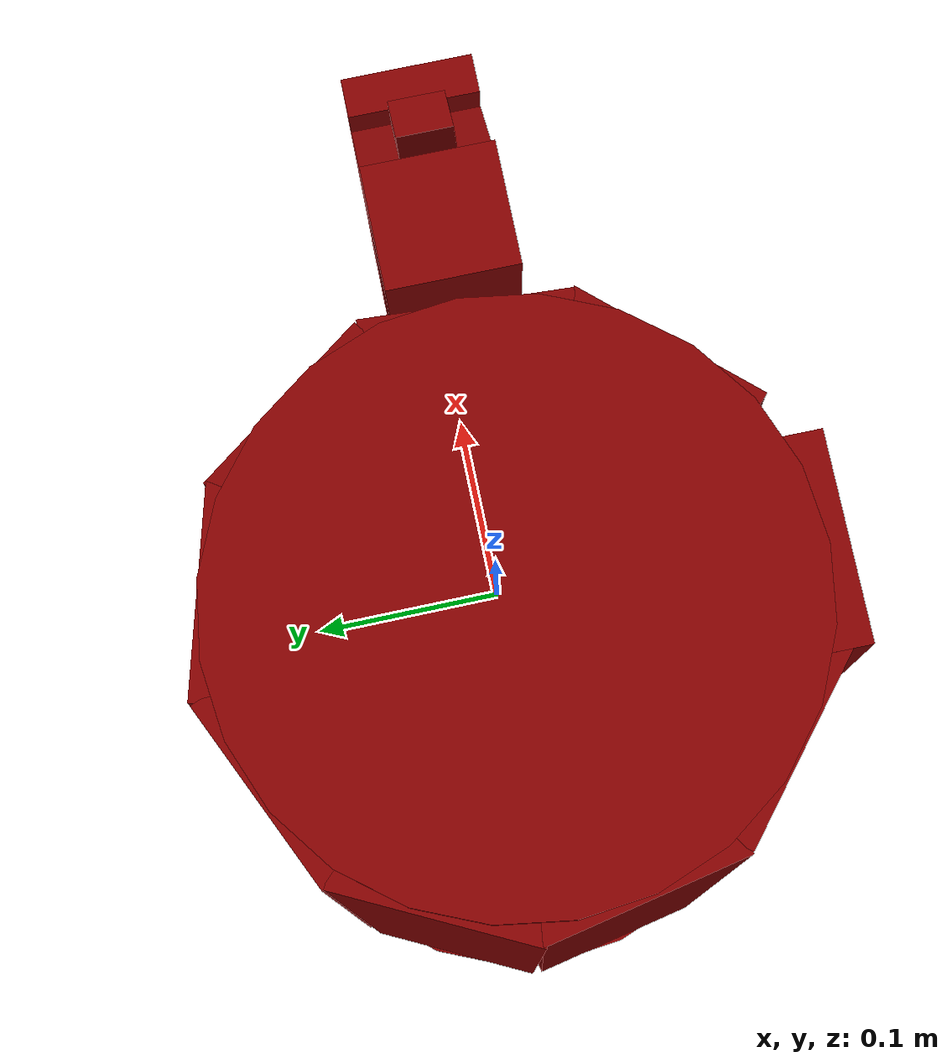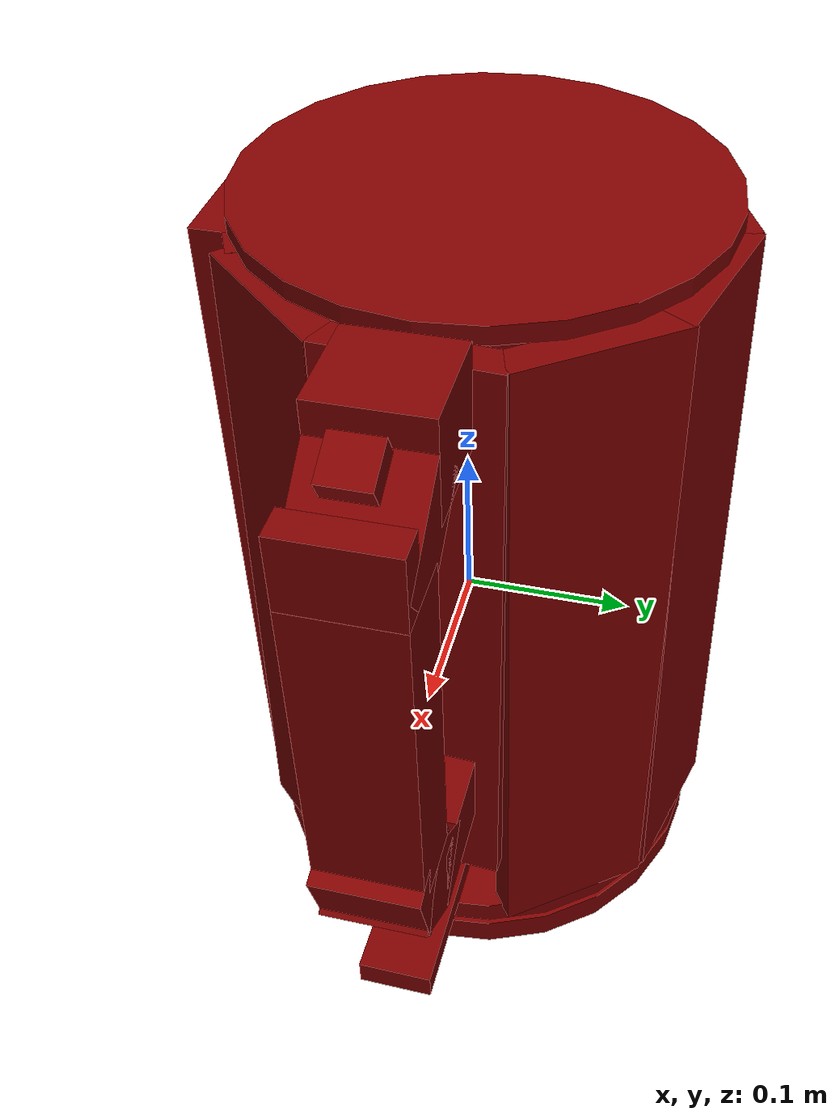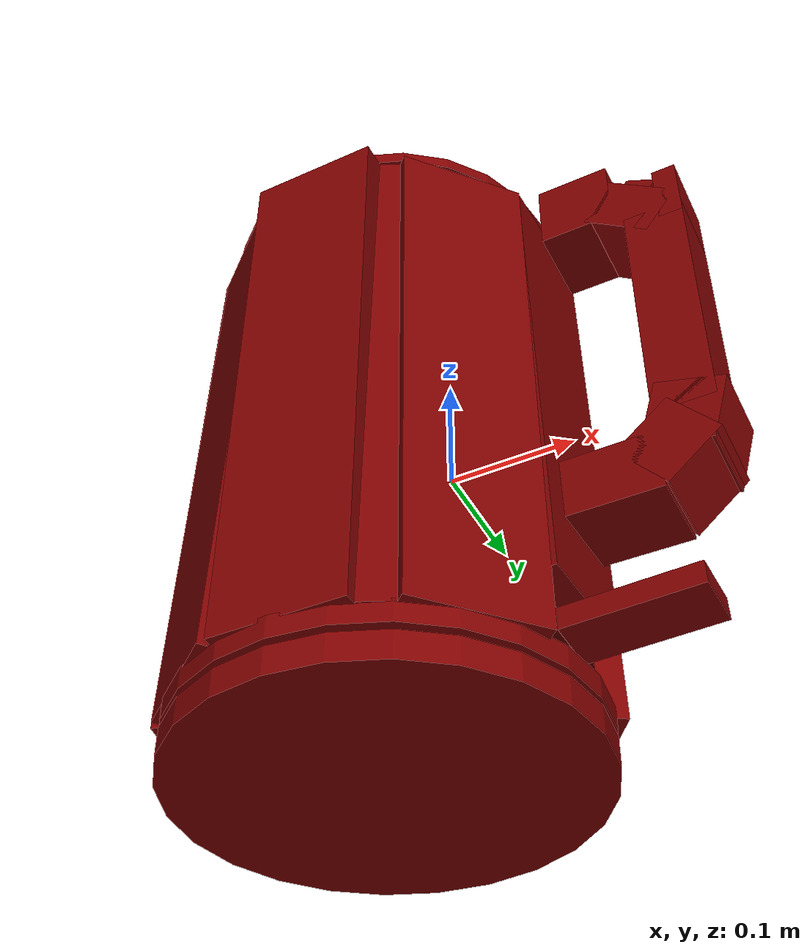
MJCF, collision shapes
<?xml version='1.0' encoding='UTF-8'?>
<mujoco model="model">
  <option timestep="0.002" gravity="0.0 0.0 -9.81"/>
  <compiler angle="radian"/>
  <asset>
    <mesh file="visuals/button_lid.obj" name="button_lid_vis"/>
    <mesh file="visuals/Body001.obj" name="Body001_vis"/>
    <mesh file="visuals/kettle_main.obj" name="kettle_main_vis"/>
    <mesh file="visuals/lid.obj" name="lid_vis"/>
    <mesh file="visuals/switch.obj" name="switch_vis"/>
    <texture file="visuals/T_BC001.png" name="Body001_material" type="2d"/>
    <material name="Body001_material" rgba="1 1 1 1.0" texture="Body001_material" shininess="0.5" specular="0.3103448502657381"/>
    <texture file="visuals/T_BC001.png" name="kettle_main_material" type="2d"/>
    <material name="kettle_main_material" rgba="1 1 1 1.0" texture="kettle_main_material" shininess="0.5" specular="0.3103448502657381"/>
    <texture file="visuals/T_BC001.png" name="button_lid_material" type="2d"/>
    <material name="button_lid_material" rgba="1 1 1 1.0" texture="button_lid_material" shininess="0.5" specular="0.3103448502657381"/>
    <texture file="visuals/T_BC001.png" name="lid_material" type="2d"/>
    <material name="lid_material" rgba="1 1 1 1.0" texture="lid_material" shininess="0.5" specular="0.3103448502657381"/>
    <texture file="visuals/T_BC001.png" name="switch_material" type="2d"/>
    <material name="switch_material" rgba="1 1 1 1.0" texture="switch_material" shininess="0.5" specular="0.3103448502657381"/>
  </asset>
  <default>
    <default class="visual">
      <geom conaffinity="0" contype="0" group="1" type="mesh"/>
    </default>
    <default class="collision">
      <geom group="0" rgba="0.5 0 0 0.5"/>
    </default>
    <default class="spawn">
      <geom group="0" rgba="1 1 1 0.5" contype="0" conaffinity="0"/>
      <site group="0" rgba="1 1 1 0.5"/>
    </default>
    <default class="region">
      <geom group="1" conaffinity="0" contype="0" rgba="0 1 0 0" mass="0"/>
    </default>
  </default>
  <worldbody>
    <body>
      <body name="object">
        <geom mesh="Body001_vis" type="mesh" solimp="0.998 0.998 0.001" solref="0.001 1" friction="0.95 0.3 0.1" class="visual" material="Body001_material"/>
        <geom type="cylinder" pos="-0.04934823 -0.00056727 -0.24220326" size="0.15319550037384033 0.010539539158344269" quat="0.9925832152366638 3.1118056048606846e-11 8.99330476755722e-09 0.12156697362661362" class="collision"/>
        <body name="kettle_main">
          <geom mesh="kettle_main_vis" type="mesh" solimp="0.998 0.998 0.001" solref="0.001 1" friction="0.95 0.3 0.1" class="visual" material="kettle_main_material"/>
          <geom type="cylinder" pos="-0.04934823 -0.00056727 -0.21769720" size="0.153195321559906 0.00859247799962759" quat="0.9925832152366638 3.1118056048606846e-11 8.99330476755722e-09 0.12156697362661362" class="collision"/>
          <geom type="box" pos="-0.04681783 -0.13738767 0.01065584" size="0.05016103386878967 0.01536363735795021 0.2227715104818344" quat="1.0 0.0 0.0 0.0" class="collision"/>
          <geom type="box" pos="-0.13316240 -0.10760645 0.01065584" size="0.010152064263820648 0.050161123275756836 0.22259505093097687" quat="0.9023288488388062 -0.005047536455094814 0.010570093058049679 0.43088915944099426" class="collision"/>
          <geom type="box" pos="-0.18170822 -0.02964404 0.01065584" size="0.010152065195143223 0.050161123275756836 0.22259505093097687" quat="0.9945631623268127 -0.0012121195904910564 0.01165055576711893 0.10347403585910797" class="collision"/>
          <geom type="box" pos="-0.17083769 0.05997668 0.01065584" size="0.010152065195143223 0.050161127001047134 0.22259505093097687" quat="0.973112940788269 0.0026946321595460176 0.01139928214251995 -0.23003041744232178" class="collision"/>
          <geom type="box" pos="-0.10543854 0.12389828 0.01065584" size="0.010152065195143223 0.050161127001047134 0.22259505093097687" quat="0.8405178189277649 0.006345106288790703 0.009846033528447151 -0.5416573286056519" class="collision"/>
          <geom type="box" pos="-0.01306965 0.13208089 0.01065584" size="0.010152065195143223 0.050161127001047134 0.22259505093097687" quat="0.6075727939605713 0.009303187020123005 0.007117252331227064 -0.7941776514053345" class="collision"/>
          <geom type="box" pos="0.06176675 0.08170518 0.01065584" size="0.010152065195143223 0.050161127001047134 0.22259505093097687" quat="0.3121856451034546 0.011127935722470284 0.0036570196971297264 -0.9499489068984985" class="collision"/>
          <geom type="box" pos="0.08831079 -0.00657713 0.03858026" size="0.010152065195143223 0.050161123275756836 0.19466298818588257" quat="0.026527434587478638 -0.011709306389093399 0.00031074826256372035 0.9995794296264648" class="collision"/>
          <geom type="box" pos="0.05458725 -0.09132070 0.01065584" size="0.010152065195143223 0.050161127001047134 0.22259505093097687" quat="0.3585485816001892 -0.010934511199593544 0.004200125113129616 0.9334375858306885" class="collision"/>
          <geom type="box" pos="0.00809588 -0.12546318 0.01065584" size="0.010152065195143223 0.015005323104560375 0.22259505093097687" quat="0.5347365140914917 -0.009897803887724876 0.006264031864702702 0.8449376821517944" class="collision"/>
          <geom class="collision" type="box" pos="0.13043668 -0.00356584 0.22212885" size="0.029746653512120247 0.03134914115071297 0.030624259263277054" quat="1.0 0.0 0.0 0.0" name="handle_6"/>
          <geom class="collision" type="box" pos="0.17117275 -0.00356584 0.19748609" size="0.03134913742542267 0.0355534553527832 0.02197188138961792" quat="0.6696721315383911 0.22702263295650482 0.22702261805534363 0.6696720719337463" name="handle_2"/>
          <geom class="collision" type="box" pos="0.20631122 -0.00356585 0.19538029" size="0.009490305557847023 0.03134913742542267 0.02767837978899479" quat="1.0 0.0 0.0 0.0" name="handle_1"/>
          <geom class="collision" type="box" pos="0.19243986 -0.00356584 0.07325474" size="0.02345595695078373 0.03134914115071297 0.10568643361330032" quat="1.0 0.0 0.0 0.0" name="handle_main"/>
          <geom class="collision" type="box" pos="0.13399833 -0.00356584 -0.07451055" size="0.03774268180131912 0.03134913742542267 0.025011377409100533" quat="1.0 0.0 0.0 0.0" name="handle_5"/>
          <geom class="collision" type="box" pos="0.17749398 -0.00356584 -0.05992023" size="0.03134913742542267 0.02665935456752777 0.026784004643559456" quat="0.6408565044403076 0.2988361716270447 0.2988361120223999 0.6408563256263733" name="handle_4"/>
          <geom class="collision" type="box" pos="0.19144962 -0.00356584 -0.03791006" size="0.03134913742542267 0.02665935456752777 0.026784004643559456" quat="0.6999636888504028 0.10025401413440704 0.10025400668382645 0.6999636292457581" name="handle_3"/>
          <body name="button_lid">
            <joint axis="0.0 0.0 -1.0" pos="0.18074461 -0.00442379 0.23688264" limited="true" name="button_lid_joint" range="0.0 0.008" type="slide" damping="100" frictionloss="1" armature=".01" stiffness="1" springref="-0.5"/>
            <geom mesh="button_lid_vis" type="mesh" solimp="0.998 0.998 0.001" solref="0.001 1" friction="0.95 0.3 0.1" class="visual" material="button_lid_material"/>
            <geom class="collision" type="box" pos="0.18020124 -0.00458804 0.23664619" size="0.013496940955519676 0.012868782505393028 0.007086337078362703" quat="0.6870449781417847 0.16723966598510742 0.16723966598510742 0.6870450973510742" name="button_lid_main"/>
          </body>
          <body name="lid">
            <joint axis="0.0 1.0 0.0" pos="0.10149171 -0.00079914 0.25052171" limited="true" name="lid_joint" range="0.0 1.5707963267948966" type="hinge" damping="1" frictionloss="0.1" armature=".01" stiffness="0.05" springref="-6"/>
            <geom mesh="lid_vis" type="mesh" solimp="0.998 0.998 0.001" solref="0.001 1" friction="0.95 0.3 0.1" class="visual" material="lid_material"/>
            <geom class="collision" type="cylinder" pos="-0.04877632 -0.00056839 0.24701281" size="0.13979527354240417 0.005358262453228235" quat="0.9925832152366638 3.1117417670367686e-11 8.99330476755722e-09 0.12156695872545242" name="lid_main"/>
          </body>
          <body name="switch">
            <joint axis="0.0 0.0 -1.0" pos="0.10964334 -0.00309735 -0.17119339" limited="true" name="switch_joint" range="0.0 0.008" type="slide" damping="100" frictionloss="1" armature=".01" stiffness="1" springref="-1"/>
            <geom mesh="switch_vis" type="mesh" solimp="0.998 0.998 0.001" solref="0.001 1" friction="0.95 0.3 0.1" class="visual" material="switch_material"/>
            <geom class="collision" type="box" pos="0.13642257 -0.00322041 -0.17162852" size="0.05087071284651756 0.02275552973151207 0.008647226728498936" quat="0.9998746514320374 0.0019454614957794547 -0.01431172527372837 -0.006486942991614342" name="switch_main"/>
          </body>
        </body>
        <geom class="region" name="reg_main" type="box" pos="1.5500000000168157e-07 2.2500000000647002e-07 1.4500000000694513e-07" size="0.216449885 0.151226235 0.253441225"/>
      </body>
    </body>
  </worldbody>
  <actuator>
    <motor name="button_lid_joint_actuator" joint="button_lid_joint" gear="50"/>
    <motor name="lid_joint_actuator" joint="lid_joint" gear="0.5"/>
    <motor name="switch_joint_actuator" joint="switch_joint" gear="50"/>
  </actuator>
</mujoco>
